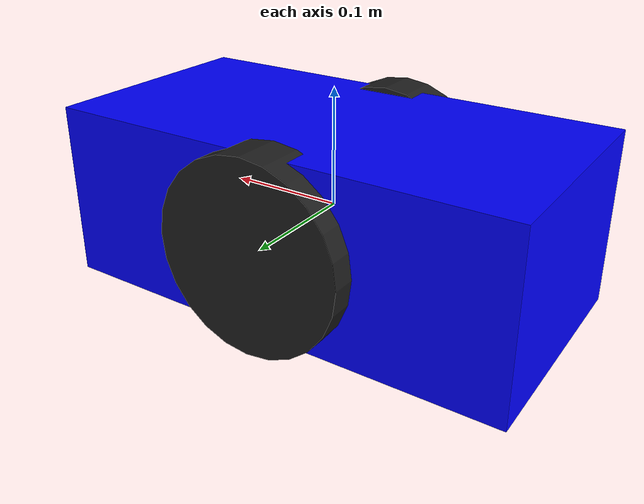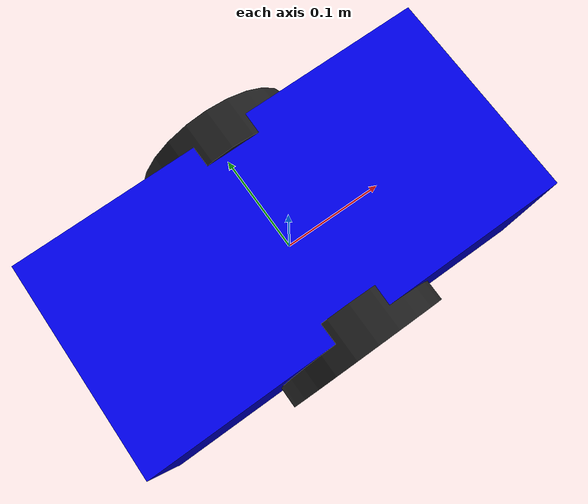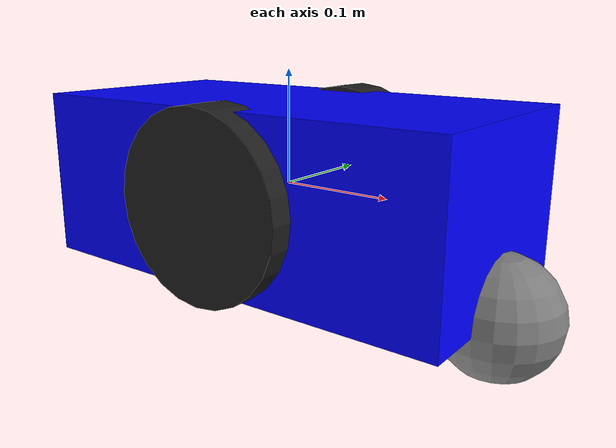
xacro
<?xml version="1.0"?>
<robot name="simple_robot">

  <!-- 底盘 -->
  <link name="base_link">
    <visual>
      <geometry>
        <box size="0.4 0.2 0.15"/>
      </geometry>
      <material name="blue">
        <color rgba="0 0 1 1"/>
      </material>
    </visual>
    <collision>
      <geometry>
        <box size="0.4 0.2 0.15"/>
      </geometry>
    </collision>
    <inertial>
      <mass value="5"/>
      <inertia ixx="0.1" ixy="0" ixz="0" iyy="0.1" iyz="0" izz="0.1"/>
    </inertial>
  </link>

  <!-- 左普通轮 -->
  <link name="wheel_left_link">
    <visual>
      <geometry>
        <cylinder radius="0.08" length="0.04"/>
      </geometry>
      <material name="black"/>
    </visual>
    <collision>
      <geometry>
        <cylinder radius="0.08" length="0.04"/>
      </geometry>
    </collision>
    <inertial>
      <mass value="1"/>
      <inertia ixx="0.01" ixy="0" ixz="0" iyy="0.01" iyz="0" izz="0.01"/>
    </inertial>
  </link>
  <joint name="wheel_left_joint" type="continuous">
    <parent link="base_link"/>
    <child link="wheel_left_link"/>
    <origin xyz="0 0.1 0" rpy="1.5780 0 0"/>
    <axis xyz="0 0 1"/>
  </joint>

  <!-- 右普通轮 -->
  <link name="wheel_right_link">
    <visual>
      <geometry>
        <cylinder radius="0.08" length="0.04"/>
      </geometry>
      <material name="black"/>
    </visual>
    <collision>
      <geometry>
        <cylinder radius="0.08" length="0.04"/>
      </geometry>
    </collision>
    <inertial>
      <mass value="1"/>
      <inertia ixx="0.01" ixy="0" ixz="0" iyy="0.01" iyz="0" izz="0.01"/>
    </inertial>
  </link>
  <joint name="wheel_right_joint" type="continuous">
    <parent link="base_link"/>
    <child link="wheel_right_link"/>
    <origin xyz="0 -0.1 0" rpy="1.5780 0 0"/>
    <axis xyz="0 0 1"/>
  </joint>

  <!-- 万向轮 -->
  <link name="caster_link">
    <visual>
      <geometry>
        <sphere radius="0.05"/>
      </geometry>
      <material name="gray">
        <color rgba="0.5 0.5 0.5 1"/>
      </material>
    </visual>
    <collision>
      <geometry>
        <sphere radius="0.05"/>
      </geometry>
    </collision>
    <inertial>
      <mass value="0.5"/>
      <inertia ixx="0.001" ixy="0" ixz="0" iyy="0.001" iyz="0" izz="0.001"/>
    </inertial>
  </link>
  <joint name="caster_joint" type="fixed">
    <parent link="base_link"/>
    <child link="caster_link"/>
    <origin xyz="0.2 0 -0.075"/>
  </joint>

  <gazebo>
    <plugin name="diff_drive" filename="libgazebo_ros_diff_drive.so">
      <updateRate>50</updateRate>
      <leftJoint>wheel_left_joint</leftJoint>
      <rightJoint>wheel_right_joint</rightJoint>
      <wheelSeparation>0.2</wheelSeparation>
      <wheelDiameter>0.16</wheelDiameter>
      <commandTopic>cmd_vel</commandTopic>
      <odometryTopic>odom</odometryTopic>
      <odometryFrame>odom</odometryFrame>
      <robotBaseFrame>base_link</robotBaseFrame>
    </plugin>
  </gazebo>

</robot>
